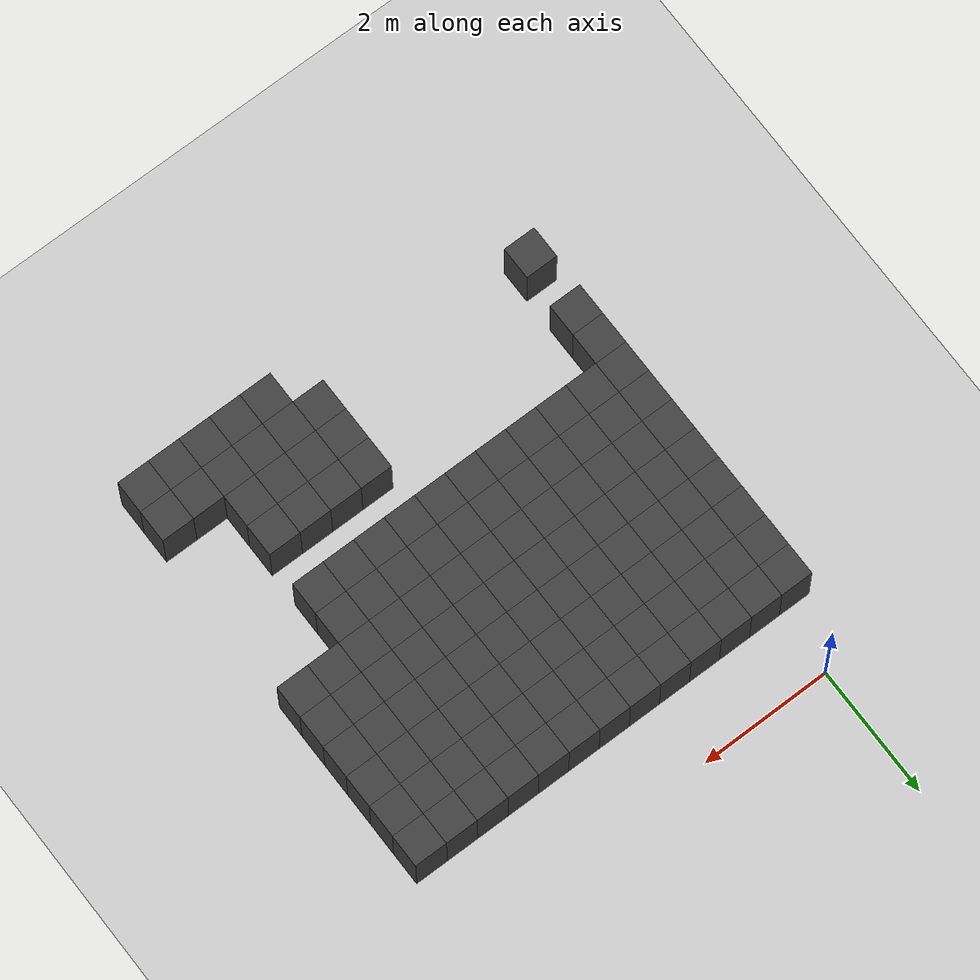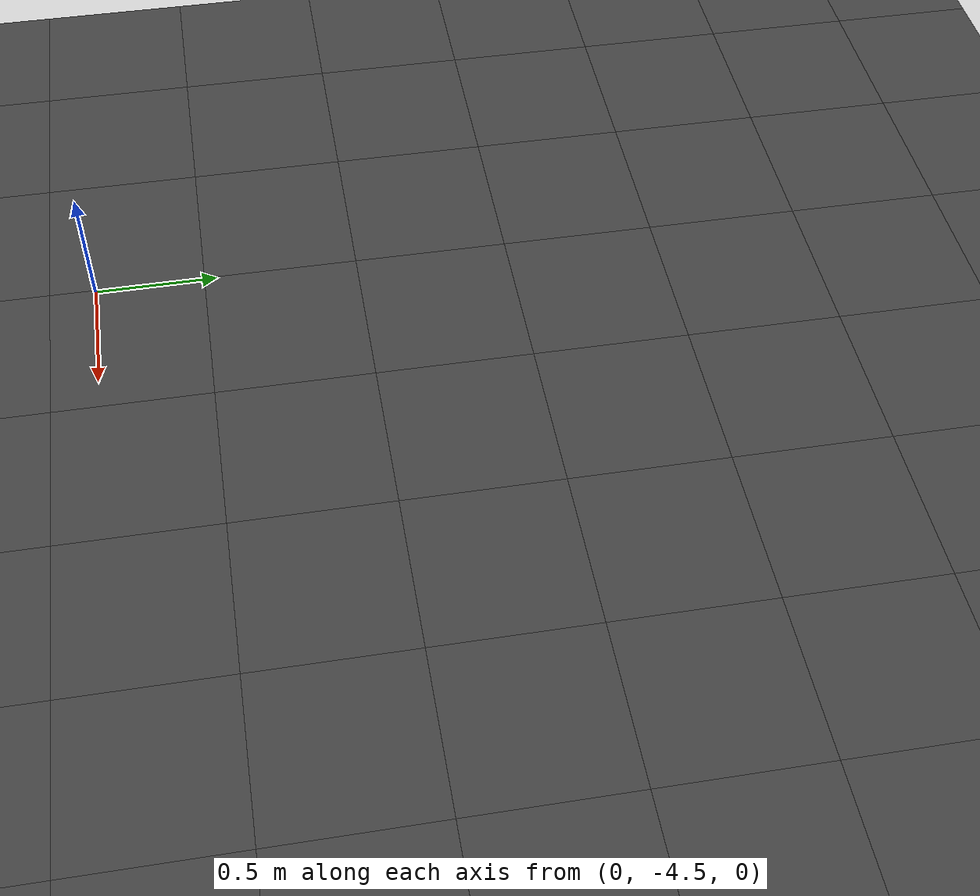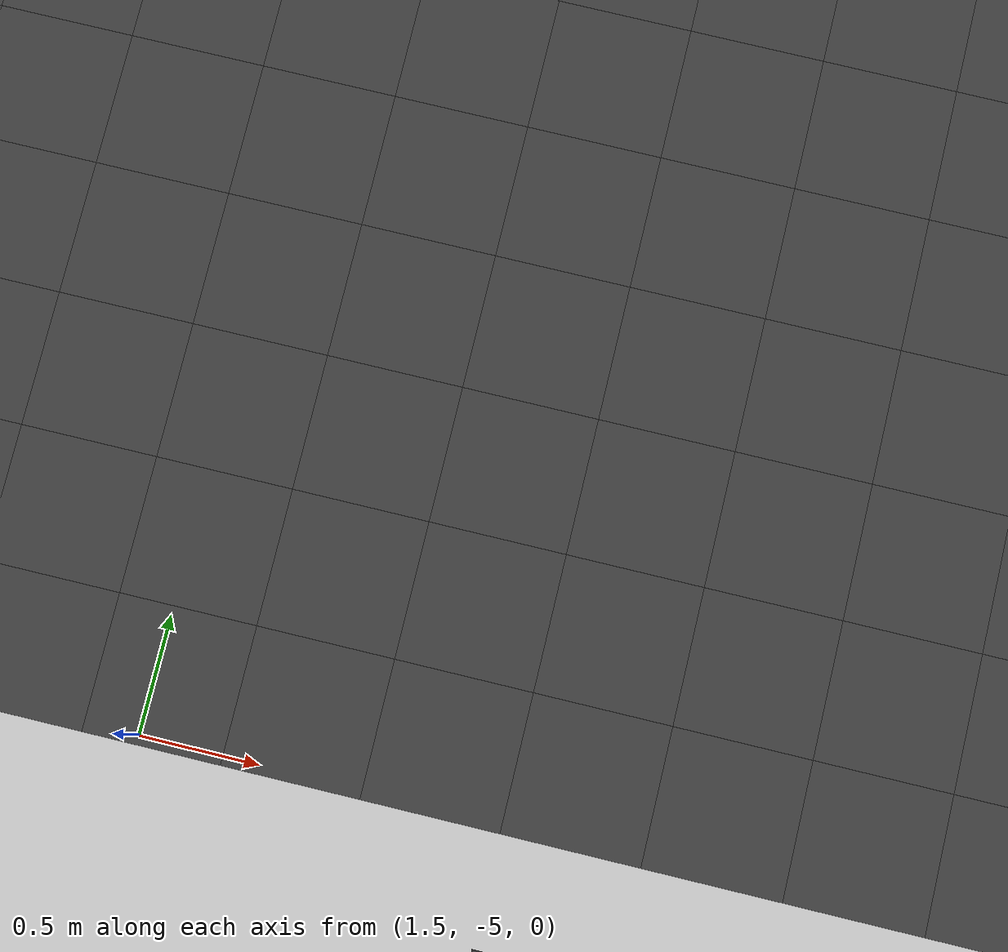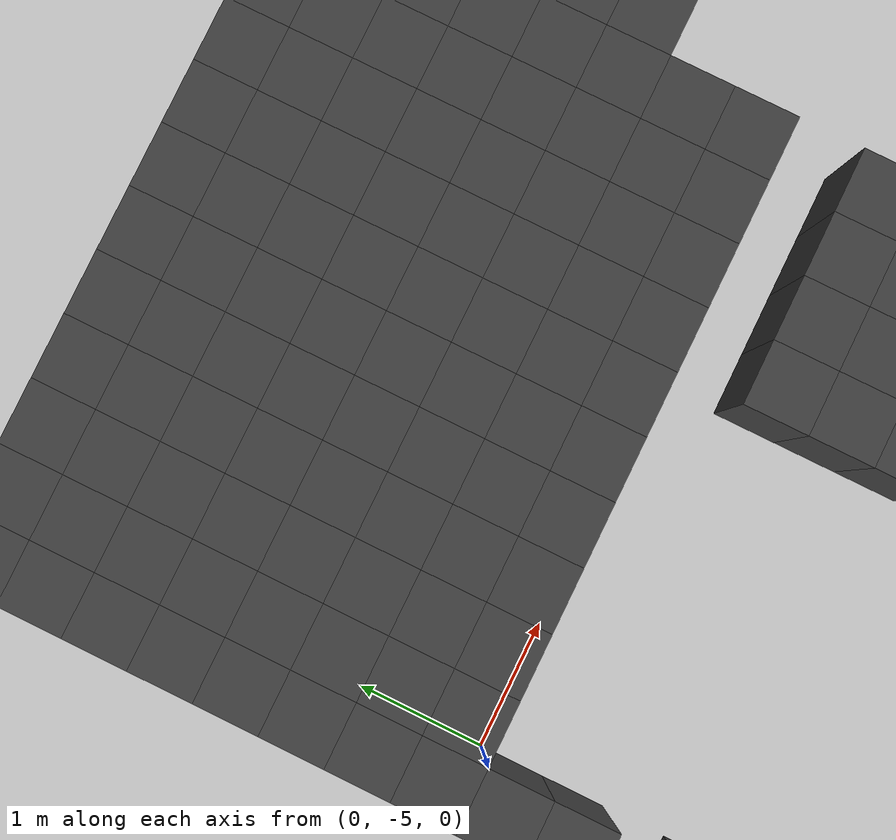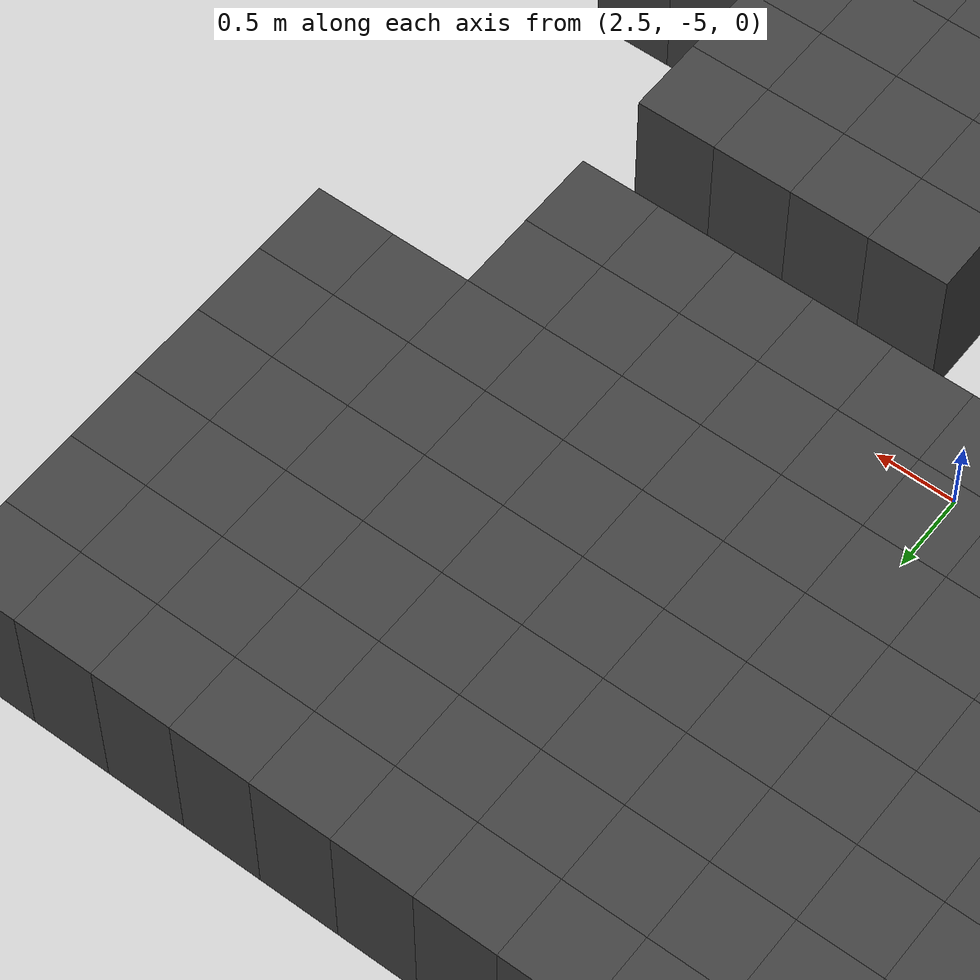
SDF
<sdf version="1.7">
 <world name="map_14888">
  <model name="ground_plane">
   <static>true</static>
   <link name="link">
    <collision name="collision">
     <geometry><plane><normal>0 0 1</normal><size>200 200</size></plane></geometry>
    </collision>
    <visual name="visual">
     <geometry><plane><normal>0 0 1</normal><size>200 200</size></plane></geometry>
     <material><ambient>0.8 0.8 0.8 1</ambient><diffuse>0.8 0.8 0.8 1</diffuse></material>
    </visual>
   </link>
  </model>
  <model name="maze_environment">
   <static>true</static>
   <link name="wall_963">
    <pose>-0.250 -1.250 0.500 0 0 0</pose>
    <collision name="col"><geometry><box><size>0.5 0.5 1.0</size></box></geometry></collision>
    <visual name="vis">
     <geometry><box><size>0.5 0.5 1.0</size></box></geometry>
     <material><ambient>0.15 0.15 0.15 1</ambient><diffuse>0.25 0.25 0.25 1</diffuse></material>
    </visual>
   </link>
   <link name="wall_964">
    <pose>0.250 -1.250 0.500 0 0 0</pose>
    <collision name="col"><geometry><box><size>0.5 0.5 1.0</size></box></geometry></collision>
    <visual name="vis">
     <geometry><box><size>0.5 0.5 1.0</size></box></geometry>
     <material><ambient>0.15 0.15 0.15 1</ambient><diffuse>0.25 0.25 0.25 1</diffuse></material>
    </visual>
   </link>
   <link name="wall_965">
    <pose>0.750 -1.250 0.500 0 0 0</pose>
    <collision name="col"><geometry><box><size>0.5 0.5 1.0</size></box></geometry></collision>
    <visual name="vis">
     <geometry><box><size>0.5 0.5 1.0</size></box></geometry>
     <material><ambient>0.15 0.15 0.15 1</ambient><diffuse>0.25 0.25 0.25 1</diffuse></material>
    </visual>
   </link>
   <link name="wall_966">
    <pose>1.250 -1.250 0.500 0 0 0</pose>
    <collision name="col"><geometry><box><size>0.5 0.5 1.0</size></box></geometry></collision>
    <visual name="vis">
     <geometry><box><size>0.5 0.5 1.0</size></box></geometry>
     <material><ambient>0.15 0.15 0.15 1</ambient><diffuse>0.25 0.25 0.25 1</diffuse></material>
    </visual>
   </link>
   <link name="wall_967">
    <pose>1.750 -1.250 0.500 0 0 0</pose>
    <collision name="col"><geometry><box><size>0.5 0.5 1.0</size></box></geometry></collision>
    <visual name="vis">
     <geometry><box><size>0.5 0.5 1.0</size></box></geometry>
     <material><ambient>0.15 0.15 0.15 1</ambient><diffuse>0.25 0.25 0.25 1</diffuse></material>
    </visual>
   </link>
   <link name="wall_968">
    <pose>2.250 -1.250 0.500 0 0 0</pose>
    <collision name="col"><geometry><box><size>0.5 0.5 1.0</size></box></geometry></collision>
    <visual name="vis">
     <geometry><box><size>0.5 0.5 1.0</size></box></geometry>
     <material><ambient>0.15 0.15 0.15 1</ambient><diffuse>0.25 0.25 0.25 1</diffuse></material>
    </visual>
   </link>
   <link name="wall_969">
    <pose>2.750 -1.250 0.500 0 0 0</pose>
    <collision name="col"><geometry><box><size>0.5 0.5 1.0</size></box></geometry></collision>
    <visual name="vis">
     <geometry><box><size>0.5 0.5 1.0</size></box></geometry>
     <material><ambient>0.15 0.15 0.15 1</ambient><diffuse>0.25 0.25 0.25 1</diffuse></material>
    </visual>
   </link>
   <link name="wall_970">
    <pose>3.250 -1.250 0.500 0 0 0</pose>
    <collision name="col"><geometry><box><size>0.5 0.5 1.0</size></box></geometry></collision>
    <visual name="vis">
     <geometry><box><size>0.5 0.5 1.0</size></box></geometry>
     <material><ambient>0.15 0.15 0.15 1</ambient><diffuse>0.25 0.25 0.25 1</diffuse></material>
    </visual>
   </link>
   <link name="wall_971">
    <pose>3.750 -1.250 0.500 0 0 0</pose>
    <collision name="col"><geometry><box><size>0.5 0.5 1.0</size></box></geometry></collision>
    <visual name="vis">
     <geometry><box><size>0.5 0.5 1.0</size></box></geometry>
     <material><ambient>0.15 0.15 0.15 1</ambient><diffuse>0.25 0.25 0.25 1</diffuse></material>
    </visual>
   </link>
   <link name="wall_972">
    <pose>4.250 -1.250 0.500 0 0 0</pose>
    <collision name="col"><geometry><box><size>0.5 0.5 1.0</size></box></geometry></collision>
    <visual name="vis">
     <geometry><box><size>0.5 0.5 1.0</size></box></geometry>
     <material><ambient>0.15 0.15 0.15 1</ambient><diffuse>0.25 0.25 0.25 1</diffuse></material>
    </visual>
   </link>
   <link name="wall_973">
    <pose>4.750 -1.250 0.500 0 0 0</pose>
    <collision name="col"><geometry><box><size>0.5 0.5 1.0</size></box></geometry></collision>
    <visual name="vis">
     <geometry><box><size>0.5 0.5 1.0</size></box></geometry>
     <material><ambient>0.15 0.15 0.15 1</ambient><diffuse>0.25 0.25 0.25 1</diffuse></material>
    </visual>
   </link>
   <link name="wall_974">
    <pose>5.250 -1.250 0.500 0 0 0</pose>
    <collision name="col"><geometry><box><size>0.5 0.5 1.0</size></box></geometry></collision>
    <visual name="vis">
     <geometry><box><size>0.5 0.5 1.0</size></box></geometry>
     <material><ambient>0.15 0.15 0.15 1</ambient><diffuse>0.25 0.25 0.25 1</diffuse></material>
    </visual>
   </link>
   <link name="wall_975">
    <pose>5.750 -1.250 0.500 0 0 0</pose>
    <collision name="col"><geometry><box><size>0.5 0.5 1.0</size></box></geometry></collision>
    <visual name="vis">
     <geometry><box><size>0.5 0.5 1.0</size></box></geometry>
     <material><ambient>0.15 0.15 0.15 1</ambient><diffuse>0.25 0.25 0.25 1</diffuse></material>
    </visual>
   </link>
   <link name="wall_1009">
    <pose>-0.250 -1.750 0.500 0 0 0</pose>
    <collision name="col"><geometry><box><size>0.5 0.5 1.0</size></box></geometry></collision>
    <visual name="vis">
     <geometry><box><size>0.5 0.5 1.0</size></box></geometry>
     <material><ambient>0.15 0.15 0.15 1</ambient><diffuse>0.25 0.25 0.25 1</diffuse></material>
    </visual>
   </link>
   <link name="wall_1010">
    <pose>0.250 -1.750 0.500 0 0 0</pose>
    <collision name="col"><geometry><box><size>0.5 0.5 1.0</size></box></geometry></collision>
    <visual name="vis">
     <geometry><box><size>0.5 0.5 1.0</size></box></geometry>
     <material><ambient>0.15 0.15 0.15 1</ambient><diffuse>0.25 0.25 0.25 1</diffuse></material>
    </visual>
   </link>
   <link name="wall_1011">
    <pose>0.750 -1.750 0.500 0 0 0</pose>
    <collision name="col"><geometry><box><size>0.5 0.5 1.0</size></box></geometry></collision>
    <visual name="vis">
     <geometry><box><size>0.5 0.5 1.0</size></box></geometry>
     <material><ambient>0.15 0.15 0.15 1</ambient><diffuse>0.25 0.25 0.25 1</diffuse></material>
    </visual>
   </link>
   <link name="wall_1012">
    <pose>1.250 -1.750 0.500 0 0 0</pose>
    <collision name="col"><geometry><box><size>0.5 0.5 1.0</size></box></geometry></collision>
    <visual name="vis">
     <geometry><box><size>0.5 0.5 1.0</size></box></geometry>
     <material><ambient>0.15 0.15 0.15 1</ambient><diffuse>0.25 0.25 0.25 1</diffuse></material>
    </visual>
   </link>
   <link name="wall_1013">
    <pose>1.750 -1.750 0.500 0 0 0</pose>
    <collision name="col"><geometry><box><size>0.5 0.5 1.0</size></box></geometry></collision>
    <visual name="vis">
     <geometry><box><size>0.5 0.5 1.0</size></box></geometry>
     <material><ambient>0.15 0.15 0.15 1</ambient><diffuse>0.25 0.25 0.25 1</diffuse></material>
    </visual>
   </link>
   <link name="wall_1014">
    <pose>2.250 -1.750 0.500 0 0 0</pose>
    <collision name="col"><geometry><box><size>0.5 0.5 1.0</size></box></geometry></collision>
    <visual name="vis">
     <geometry><box><size>0.5 0.5 1.0</size></box></geometry>
     <material><ambient>0.15 0.15 0.15 1</ambient><diffuse>0.25 0.25 0.25 1</diffuse></material>
    </visual>
   </link>
   <link name="wall_1015">
    <pose>2.750 -1.750 0.500 0 0 0</pose>
    <collision name="col"><geometry><box><size>0.5 0.5 1.0</size></box></geometry></collision>
    <visual name="vis">
     <geometry><box><size>0.5 0.5 1.0</size></box></geometry>
     <material><ambient>0.15 0.15 0.15 1</ambient><diffuse>0.25 0.25 0.25 1</diffuse></material>
    </visual>
   </link>
   <link name="wall_1016">
    <pose>3.250 -1.750 0.500 0 0 0</pose>
    <collision name="col"><geometry><box><size>0.5 0.5 1.0</size></box></geometry></collision>
    <visual name="vis">
     <geometry><box><size>0.5 0.5 1.0</size></box></geometry>
     <material><ambient>0.15 0.15 0.15 1</ambient><diffuse>0.25 0.25 0.25 1</diffuse></material>
    </visual>
   </link>
   <link name="wall_1017">
    <pose>3.750 -1.750 0.500 0 0 0</pose>
    <collision name="col"><geometry><box><size>0.5 0.5 1.0</size></box></geometry></collision>
    <visual name="vis">
     <geometry><box><size>0.5 0.5 1.0</size></box></geometry>
     <material><ambient>0.15 0.15 0.15 1</ambient><diffuse>0.25 0.25 0.25 1</diffuse></material>
    </visual>
   </link>
   <link name="wall_1018">
    <pose>4.250 -1.750 0.500 0 0 0</pose>
    <collision name="col"><geometry><box><size>0.5 0.5 1.0</size></box></geometry></collision>
    <visual name="vis">
     <geometry><box><size>0.5 0.5 1.0</size></box></geometry>
     <material><ambient>0.15 0.15 0.15 1</ambient><diffuse>0.25 0.25 0.25 1</diffuse></material>
    </visual>
   </link>
   <link name="wall_1019">
    <pose>4.750 -1.750 0.500 0 0 0</pose>
    <collision name="col"><geometry><box><size>0.5 0.5 1.0</size></box></geometry></collision>
    <visual name="vis">
     <geometry><box><size>0.5 0.5 1.0</size></box></geometry>
     <material><ambient>0.15 0.15 0.15 1</ambient><diffuse>0.25 0.25 0.25 1</diffuse></material>
    </visual>
   </link>
   <link name="wall_1020">
    <pose>5.250 -1.750 0.500 0 0 0</pose>
    <collision name="col"><geometry><box><size>0.5 0.5 1.0</size></box></geometry></collision>
    <visual name="vis">
     <geometry><box><size>0.5 0.5 1.0</size></box></geometry>
     <material><ambient>0.15 0.15 0.15 1</ambient><diffuse>0.25 0.25 0.25 1</diffuse></material>
    </visual>
   </link>
   <link name="wall_1021">
    <pose>5.750 -1.750 0.500 0 0 0</pose>
    <collision name="col"><geometry><box><size>0.5 0.5 1.0</size></box></geometry></collision>
    <visual name="vis">
     <geometry><box><size>0.5 0.5 1.0</size></box></geometry>
     <material><ambient>0.15 0.15 0.15 1</ambient><diffuse>0.25 0.25 0.25 1</diffuse></material>
    </visual>
   </link>
   <link name="wall_1055">
    <pose>-0.250 -2.250 0.500 0 0 0</pose>
    <collision name="col"><geometry><box><size>0.5 0.5 1.0</size></box></geometry></collision>
    <visual name="vis">
     <geometry><box><size>0.5 0.5 1.0</size></box></geometry>
     <material><ambient>0.15 0.15 0.15 1</ambient><diffuse>0.25 0.25 0.25 1</diffuse></material>
    </visual>
   </link>
   <link name="wall_1056">
    <pose>0.250 -2.250 0.500 0 0 0</pose>
    <collision name="col"><geometry><box><size>0.5 0.5 1.0</size></box></geometry></collision>
    <visual name="vis">
     <geometry><box><size>0.5 0.5 1.0</size></box></geometry>
     <material><ambient>0.15 0.15 0.15 1</ambient><diffuse>0.25 0.25 0.25 1</diffuse></material>
    </visual>
   </link>
   <link name="wall_1057">
    <pose>0.750 -2.250 0.500 0 0 0</pose>
    <collision name="col"><geometry><box><size>0.5 0.5 1.0</size></box></geometry></collision>
    <visual name="vis">
     <geometry><box><size>0.5 0.5 1.0</size></box></geometry>
     <material><ambient>0.15 0.15 0.15 1</ambient><diffuse>0.25 0.25 0.25 1</diffuse></material>
    </visual>
   </link>
   <link name="wall_1058">
    <pose>1.250 -2.250 0.500 0 0 0</pose>
    <collision name="col"><geometry><box><size>0.5 0.5 1.0</size></box></geometry></collision>
    <visual name="vis">
     <geometry><box><size>0.5 0.5 1.0</size></box></geometry>
     <material><ambient>0.15 0.15 0.15 1</ambient><diffuse>0.25 0.25 0.25 1</diffuse></material>
    </visual>
   </link>
   <link name="wall_1059">
    <pose>1.750 -2.250 0.500 0 0 0</pose>
    <collision name="col"><geometry><box><size>0.5 0.5 1.0</size></box></geometry></collision>
    <visual name="vis">
     <geometry><box><size>0.5 0.5 1.0</size></box></geometry>
     <material><ambient>0.15 0.15 0.15 1</ambient><diffuse>0.25 0.25 0.25 1</diffuse></material>
    </visual>
   </link>
   <link name="wall_1060">
    <pose>2.250 -2.250 0.500 0 0 0</pose>
    <collision name="col"><geometry><box><size>0.5 0.5 1.0</size></box></geometry></collision>
    <visual name="vis">
     <geometry><box><size>0.5 0.5 1.0</size></box></geometry>
     <material><ambient>0.15 0.15 0.15 1</ambient><diffuse>0.25 0.25 0.25 1</diffuse></material>
    </visual>
   </link>
   <link name="wall_1061">
    <pose>2.750 -2.250 0.500 0 0 0</pose>
    <collision name="col"><geometry><box><size>0.5 0.5 1.0</size></box></geometry></collision>
    <visual name="vis">
     <geometry><box><size>0.5 0.5 1.0</size></box></geometry>
     <material><ambient>0.15 0.15 0.15 1</ambient><diffuse>0.25 0.25 0.25 1</diffuse></material>
    </visual>
   </link>
   <link name="wall_1062">
    <pose>3.250 -2.250 0.500 0 0 0</pose>
    <collision name="col"><geometry><box><size>0.5 0.5 1.0</size></box></geometry></collision>
    <visual name="vis">
     <geometry><box><size>0.5 0.5 1.0</size></box></geometry>
     <material><ambient>0.15 0.15 0.15 1</ambient><diffuse>0.25 0.25 0.25 1</diffuse></material>
    </visual>
   </link>
   <link name="wall_1063">
    <pose>3.750 -2.250 0.500 0 0 0</pose>
    <collision name="col"><geometry><box><size>0.5 0.5 1.0</size></box></geometry></collision>
    <visual name="vis">
     <geometry><box><size>0.5 0.5 1.0</size></box></geometry>
     <material><ambient>0.15 0.15 0.15 1</ambient><diffuse>0.25 0.25 0.25 1</diffuse></material>
    </visual>
   </link>
   <link name="wall_1064">
    <pose>4.250 -2.250 0.500 0 0 0</pose>
    <collision name="col"><geometry><box><size>0.5 0.5 1.0</size></box></geometry></collision>
    <visual name="vis">
     <geometry><box><size>0.5 0.5 1.0</size></box></geometry>
     <material><ambient>0.15 0.15 0.15 1</ambient><diffuse>0.25 0.25 0.25 1</diffuse></material>
    </visual>
   </link>
   <link name="wall_1065">
    <pose>4.750 -2.250 0.500 0 0 0</pose>
    <collision name="col"><geometry><box><size>0.5 0.5 1.0</size></box></geometry></collision>
    <visual name="vis">
     <geometry><box><size>0.5 0.5 1.0</size></box></geometry>
     <material><ambient>0.15 0.15 0.15 1</ambient><diffuse>0.25 0.25 0.25 1</diffuse></material>
    </visual>
   </link>
   <link name="wall_1066">
    <pose>5.250 -2.250 0.500 0 0 0</pose>
    <collision name="col"><geometry><box><size>0.5 0.5 1.0</size></box></geometry></collision>
    <visual name="vis">
     <geometry><box><size>0.5 0.5 1.0</size></box></geometry>
     <material><ambient>0.15 0.15 0.15 1</ambient><diffuse>0.25 0.25 0.25 1</diffuse></material>
    </visual>
   </link>
   <link name="wall_1067">
    <pose>5.750 -2.250 0.500 0 0 0</pose>
    <collision name="col"><geometry><box><size>0.5 0.5 1.0</size></box></geometry></collision>
    <visual name="vis">
     <geometry><box><size>0.5 0.5 1.0</size></box></geometry>
     <material><ambient>0.15 0.15 0.15 1</ambient><diffuse>0.25 0.25 0.25 1</diffuse></material>
    </visual>
   </link>
   <link name="wall_1104">
    <pose>-0.250 -2.750 0.500 0 0 0</pose>
    <collision name="col"><geometry><box><size>0.5 0.5 1.0</size></box></geometry></collision>
    <visual name="vis">
     <geometry><box><size>0.5 0.5 1.0</size></box></geometry>
     <material><ambient>0.15 0.15 0.15 1</ambient><diffuse>0.25 0.25 0.25 1</diffuse></material>
    </visual>
   </link>
   <link name="wall_1105">
    <pose>0.250 -2.750 0.500 0 0 0</pose>
    <collision name="col"><geometry><box><size>0.5 0.5 1.0</size></box></geometry></collision>
    <visual name="vis">
     <geometry><box><size>0.5 0.5 1.0</size></box></geometry>
     <material><ambient>0.15 0.15 0.15 1</ambient><diffuse>0.25 0.25 0.25 1</diffuse></material>
    </visual>
   </link>
   <link name="wall_1106">
    <pose>0.750 -2.750 0.500 0 0 0</pose>
    <collision name="col"><geometry><box><size>0.5 0.5 1.0</size></box></geometry></collision>
    <visual name="vis">
     <geometry><box><size>0.5 0.5 1.0</size></box></geometry>
     <material><ambient>0.15 0.15 0.15 1</ambient><diffuse>0.25 0.25 0.25 1</diffuse></material>
    </visual>
   </link>
   <link name="wall_1107">
    <pose>1.250 -2.750 0.500 0 0 0</pose>
    <collision name="col"><geometry><box><size>0.5 0.5 1.0</size></box></geometry></collision>
    <visual name="vis">
     <geometry><box><size>0.5 0.5 1.0</size></box></geometry>
     <material><ambient>0.15 0.15 0.15 1</ambient><diffuse>0.25 0.25 0.25 1</diffuse></material>
    </visual>
   </link>
   <link name="wall_1108">
    <pose>1.750 -2.750 0.500 0 0 0</pose>
    <collision name="col"><geometry><box><size>0.5 0.5 1.0</size></box></geometry></collision>
    <visual name="vis">
     <geometry><box><size>0.5 0.5 1.0</size></box></geometry>
     <material><ambient>0.15 0.15 0.15 1</ambient><diffuse>0.25 0.25 0.25 1</diffuse></material>
    </visual>
   </link>
   <link name="wall_1109">
    <pose>2.250 -2.750 0.500 0 0 0</pose>
    <collision name="col"><geometry><box><size>0.5 0.5 1.0</size></box></geometry></collision>
    <visual name="vis">
     <geometry><box><size>0.5 0.5 1.0</size></box></geometry>
     <material><ambient>0.15 0.15 0.15 1</ambient><diffuse>0.25 0.25 0.25 1</diffuse></material>
    </visual>
   </link>
   <link name="wall_1110">
    <pose>2.750 -2.750 0.500 0 0 0</pose>
    <collision name="col"><geometry><box><size>0.5 0.5 1.0</size></box></geometry></collision>
    <visual name="vis">
     <geometry><box><size>0.5 0.5 1.0</size></box></geometry>
     <material><ambient>0.15 0.15 0.15 1</ambient><diffuse>0.25 0.25 0.25 1</diffuse></material>
    </visual>
   </link>
   <link name="wall_1111">
    <pose>3.250 -2.750 0.500 0 0 0</pose>
    <collision name="col"><geometry><box><size>0.5 0.5 1.0</size></box></geometry></collision>
    <visual name="vis">
     <geometry><box><size>0.5 0.5 1.0</size></box></geometry>
     <material><ambient>0.15 0.15 0.15 1</ambient><diffuse>0.25 0.25 0.25 1</diffuse></material>
    </visual>
   </link>
   <link name="wall_1112">
    <pose>3.750 -2.750 0.500 0 0 0</pose>
    <collision name="col"><geometry><box><size>0.5 0.5 1.0</size></box></geometry></collision>
    <visual name="vis">
     <geometry><box><size>0.5 0.5 1.0</size></box></geometry>
     <material><ambient>0.15 0.15 0.15 1</ambient><diffuse>0.25 0.25 0.25 1</diffuse></material>
    </visual>
   </link>
   <link name="wall_1113">
    <pose>4.250 -2.750 0.500 0 0 0</pose>
    <collision name="col"><geometry><box><size>0.5 0.5 1.0</size></box></geometry></collision>
    <visual name="vis">
     <geometry><box><size>0.5 0.5 1.0</size></box></geometry>
     <material><ambient>0.15 0.15 0.15 1</ambient><diffuse>0.25 0.25 0.25 1</diffuse></material>
    </visual>
   </link>
   <link name="wall_1114">
    <pose>4.750 -2.750 0.500 0 0 0</pose>
    <collision name="col"><geometry><box><size>0.5 0.5 1.0</size></box></geometry></collision>
    <visual name="vis">
     <geometry><box><size>0.5 0.5 1.0</size></box></geometry>
     <material><ambient>0.15 0.15 0.15 1</ambient><diffuse>0.25 0.25 0.25 1</diffuse></material>
    </visual>
   </link>
   <link name="wall_1115">
    <pose>5.250 -2.750 0.500 0 0 0</pose>
    <collision name="col"><geometry><box><size>0.5 0.5 1.0</size></box></geometry></collision>
    <visual name="vis">
     <geometry><box><size>0.5 0.5 1.0</size></box></geometry>
     <material><ambient>0.15 0.15 0.15 1</ambient><diffuse>0.25 0.25 0.25 1</diffuse></material>
    </visual>
   </link>
   <link name="wall_1116">
    <pose>5.750 -2.750 0.500 0 0 0</pose>
    <collision name="col"><geometry><box><size>0.5 0.5 1.0</size></box></geometry></collision>
    <visual name="vis">
     <geometry><box><size>0.5 0.5 1.0</size></box></geometry>
     <material><ambient>0.15 0.15 0.15 1</ambient><diffuse>0.25 0.25 0.25 1</diffuse></material>
    </visual>
   </link>
   <link name="wall_1153">
    <pose>-0.250 -3.250 0.500 0 0 0</pose>
    <collision name="col"><geometry><box><size>0.5 0.5 1.0</size></box></geometry></collision>
    <visual name="vis">
     <geometry><box><size>0.5 0.5 1.0</size></box></geometry>
     <material><ambient>0.15 0.15 0.15 1</ambient><diffuse>0.25 0.25 0.25 1</diffuse></material>
    </visual>
   </link>
   <link name="wall_1154">
    <pose>0.250 -3.250 0.500 0 0 0</pose>
    <collision name="col"><geometry><box><size>0.5 0.5 1.0</size></box></geometry></collision>
    <visual name="vis">
     <geometry><box><size>0.5 0.5 1.0</size></box></geometry>
     <material><ambient>0.15 0.15 0.15 1</ambient><diffuse>0.25 0.25 0.25 1</diffuse></material>
    </visual>
   </link>
   <link name="wall_1155">
    <pose>0.750 -3.250 0.500 0 0 0</pose>
    <collision name="col"><geometry><box><size>0.5 0.5 1.0</size></box></geometry></collision>
    <visual name="vis">
     <geometry><box><size>0.5 0.5 1.0</size></box></geometry>
     <material><ambient>0.15 0.15 0.15 1</ambient><diffuse>0.25 0.25 0.25 1</diffuse></material>
    </visual>
   </link>
   <link name="wall_1156">
    <pose>1.250 -3.250 0.500 0 0 0</pose>
    <collision name="col"><geometry><box><size>0.5 0.5 1.0</size></box></geometry></collision>
    <visual name="vis">
     <geometry><box><size>0.5 0.5 1.0</size></box></geometry>
     <material><ambient>0.15 0.15 0.15 1</ambient><diffuse>0.25 0.25 0.25 1</diffuse></material>
    </visual>
   </link>
   <link name="wall_1157">
    <pose>1.750 -3.250 0.500 0 0 0</pose>
    <collision name="col"><geometry><box><size>0.5 0.5 1.0</size></box></geometry></collision>
    <visual name="vis">
     <geometry><box><size>0.5 0.5 1.0</size></box></geometry>
     <material><ambient>0.15 0.15 0.15 1</ambient><diffuse>0.25 0.25 0.25 1</diffuse></material>
    </visual>
   </link>
   <link name="wall_1158">
    <pose>2.250 -3.250 0.500 0 0 0</pose>
    <collision name="col"><geometry><box><size>0.5 0.5 1.0</size></box></geometry></collision>
    <visual name="vis">
     <geometry><box><size>0.5 0.5 1.0</size></box></geometry>
     <material><ambient>0.15 0.15 0.15 1</ambient><diffuse>0.25 0.25 0.25 1</diffuse></material>
    </visual>
   </link>
   <link name="wall_1159">
    <pose>2.750 -3.250 0.500 0 0 0</pose>
    <collision name="col"><geometry><box><size>0.5 0.5 1.0</size></box></geometry></collision>
    <visual name="vis">
     <geometry><box><size>0.5 0.5 1.0</size></box></geometry>
     <material><ambient>0.15 0.15 0.15 1</ambient><diffuse>0.25 0.25 0.25 1</diffuse></material>
    </visual>
   </link>
   <link name="wall_1160">
    <pose>3.250 -3.250 0.500 0 0 0</pose>
    <collision name="col"><geometry><box><size>0.5 0.5 1.0</size></box></geometry></collision>
    <visual name="vis">
     <geometry><box><size>0.5 0.5 1.0</size></box></geometry>
     <material><ambient>0.15 0.15 0.15 1</ambient><diffuse>0.25 0.25 0.25 1</diffuse></material>
    </visual>
   </link>
   <link name="wall_1161">
    <pose>3.750 -3.250 0.500 0 0 0</pose>
    <collision name="col"><geometry><box><size>0.5 0.5 1.0</size></box></geometry></collision>
    <visual name="vis">
     <geometry><box><size>0.5 0.5 1.0</size></box></geometry>
     <material><ambient>0.15 0.15 0.15 1</ambient><diffuse>0.25 0.25 0.25 1</diffuse></material>
    </visual>
   </link>
   <link name="wall_1162">
    <pose>4.250 -3.250 0.500 0 0 0</pose>
    <collision name="col"><geometry><box><size>0.5 0.5 1.0</size></box></geometry></collision>
    <visual name="vis">
     <geometry><box><size>0.5 0.5 1.0</size></box></geometry>
     <material><ambient>0.15 0.15 0.15 1</ambient><diffuse>0.25 0.25 0.25 1</diffuse></material>
    </visual>
   </link>
   <link name="wall_1163">
    <pose>4.750 -3.250 0.500 0 0 0</pose>
    <collision name="col"><geometry><box><size>0.5 0.5 1.0</size></box></geometry></collision>
    <visual name="vis">
     <geometry><box><size>0.5 0.5 1.0</size></box></geometry>
     <material><ambient>0.15 0.15 0.15 1</ambient><diffuse>0.25 0.25 0.25 1</diffuse></material>
    </visual>
   </link>
   <link name="wall_1164">
    <pose>5.250 -3.250 0.500 0 0 0</pose>
    <collision name="col"><geometry><box><size>0.5 0.5 1.0</size></box></geometry></collision>
    <visual name="vis">
     <geometry><box><size>0.5 0.5 1.0</size></box></geometry>
     <material><ambient>0.15 0.15 0.15 1</ambient><diffuse>0.25 0.25 0.25 1</diffuse></material>
    </visual>
   </link>
   <link name="wall_1165">
    <pose>5.750 -3.250 0.500 0 0 0</pose>
    <collision name="col"><geometry><box><size>0.5 0.5 1.0</size></box></geometry></collision>
    <visual name="vis">
     <geometry><box><size>0.5 0.5 1.0</size></box></geometry>
     <material><ambient>0.15 0.15 0.15 1</ambient><diffuse>0.25 0.25 0.25 1</diffuse></material>
    </visual>
   </link>
   <link name="wall_1202">
    <pose>-0.250 -3.750 0.500 0 0 0</pose>
    <collision name="col"><geometry><box><size>0.5 0.5 1.0</size></box></geometry></collision>
    <visual name="vis">
     <geometry><box><size>0.5 0.5 1.0</size></box></geometry>
     <material><ambient>0.15 0.15 0.15 1</ambient><diffuse>0.25 0.25 0.25 1</diffuse></material>
    </visual>
   </link>
   <link name="wall_1203">
    <pose>0.250 -3.750 0.500 0 0 0</pose>
    <collision name="col"><geometry><box><size>0.5 0.5 1.0</size></box></geometry></collision>
    <visual name="vis">
     <geometry><box><size>0.5 0.5 1.0</size></box></geometry>
     <material><ambient>0.15 0.15 0.15 1</ambient><diffuse>0.25 0.25 0.25 1</diffuse></material>
    </visual>
   </link>
   <link name="wall_1204">
    <pose>0.750 -3.750 0.500 0 0 0</pose>
    <collision name="col"><geometry><box><size>0.5 0.5 1.0</size></box></geometry></collision>
    <visual name="vis">
     <geometry><box><size>0.5 0.5 1.0</size></box></geometry>
     <material><ambient>0.15 0.15 0.15 1</ambient><diffuse>0.25 0.25 0.25 1</diffuse></material>
    </visual>
   </link>
   <link name="wall_1205">
    <pose>1.250 -3.750 0.500 0 0 0</pose>
    <collision name="col"><geometry><box><size>0.5 0.5 1.0</size></box></geometry></collision>
    <visual name="vis">
     <geometry><box><size>0.5 0.5 1.0</size></box></geometry>
     <material><ambient>0.15 0.15 0.15 1</ambient><diffuse>0.25 0.25 0.25 1</diffuse></material>
    </visual>
   </link>
   <link name="wall_1206">
    <pose>1.750 -3.750 0.500 0 0 0</pose>
    <collision name="col"><geometry><box><size>0.5 0.5 1.0</size></box></geometry></collision>
    <visual name="vis">
     <geometry><box><size>0.5 0.5 1.0</size></box></geometry>
     <material><ambient>0.15 0.15 0.15 1</ambient><diffuse>0.25 0.25 0.25 1</diffuse></material>
    </visual>
   </link>
   <link name="wall_1207">
    <pose>2.250 -3.750 0.500 0 0 0</pose>
    <collision name="col"><geometry><box><size>0.5 0.5 1.0</size></box></geometry></collision>
    <visual name="vis">
     <geometry><box><size>0.5 0.5 1.0</size></box></geometry>
     <material><ambient>0.15 0.15 0.15 1</ambient><diffuse>0.25 0.25 0.25 1</diffuse></material>
    </visual>
   </link>
   <link name="wall_1208">
    <pose>2.750 -3.750 0.500 0 0 0</pose>
    <collision name="col"><geometry><box><size>0.5 0.5 1.0</size></box></geometry></collision>
    <visual name="vis">
     <geometry><box><size>0.5 0.5 1.0</size></box></geometry>
     <material><ambient>0.15 0.15 0.15 1</ambient><diffuse>0.25 0.25 0.25 1</diffuse></material>
    </visual>
   </link>
   <link name="wall_1209">
    <pose>3.250 -3.750 0.500 0 0 0</pose>
    <collision name="col"><geometry><box><size>0.5 0.5 1.0</size></box></geometry></collision>
    <visual name="vis">
     <geometry><box><size>0.5 0.5 1.0</size></box></geometry>
     <material><ambient>0.15 0.15 0.15 1</ambient><diffuse>0.25 0.25 0.25 1</diffuse></material>
    </visual>
   </link>
   <link name="wall_1210">
    <pose>3.750 -3.750 0.500 0 0 0</pose>
    <collision name="col"><geometry><box><size>0.5 0.5 1.0</size></box></geometry></collision>
    <visual name="vis">
     <geometry><box><size>0.5 0.5 1.0</size></box></geometry>
     <material><ambient>0.15 0.15 0.15 1</ambient><diffuse>0.25 0.25 0.25 1</diffuse></material>
    </visual>
   </link>
   <link name="wall_1211">
    <pose>4.250 -3.750 0.500 0 0 0</pose>
    <collision name="col"><geometry><box><size>0.5 0.5 1.0</size></box></geometry></collision>
    <visual name="vis">
     <geometry><box><size>0.5 0.5 1.0</size></box></geometry>
     <material><ambient>0.15 0.15 0.15 1</ambient><diffuse>0.25 0.25 0.25 1</diffuse></material>
    </visual>
   </link>
   <link name="wall_1212">
    <pose>4.750 -3.750 0.500 0 0 0</pose>
    <collision name="col"><geometry><box><size>0.5 0.5 1.0</size></box></geometry></collision>
    <visual name="vis">
     <geometry><box><size>0.5 0.5 1.0</size></box></geometry>
     <material><ambient>0.15 0.15 0.15 1</ambient><diffuse>0.25 0.25 0.25 1</diffuse></material>
    </visual>
   </link>
   <link name="wall_1213">
    <pose>5.250 -3.750 0.500 0 0 0</pose>
    <collision name="col"><geometry><box><size>0.5 0.5 1.0</size></box></geometry></collision>
    <visual name="vis">
     <geometry><box><size>0.5 0.5 1.0</size></box></geometry>
     <material><ambient>0.15 0.15 0.15 1</ambient><diffuse>0.25 0.25 0.25 1</diffuse></material>
    </visual>
   </link>
   <link name="wall_1214">
    <pose>5.750 -3.750 0.500 0 0 0</pose>
    <collision name="col"><geometry><box><size>0.5 0.5 1.0</size></box></geometry></collision>
    <visual name="vis">
     <geometry><box><size>0.5 0.5 1.0</size></box></geometry>
     <material><ambient>0.15 0.15 0.15 1</ambient><diffuse>0.25 0.25 0.25 1</diffuse></material>
    </visual>
   </link>
   <link name="wall_1244">
    <pose>-0.250 -4.250 0.500 0 0 0</pose>
    <collision name="col"><geometry><box><size>0.5 0.5 1.0</size></box></geometry></collision>
    <visual name="vis">
     <geometry><box><size>0.5 0.5 1.0</size></box></geometry>
     <material><ambient>0.15 0.15 0.15 1</ambient><diffuse>0.25 0.25 0.25 1</diffuse></material>
    </visual>
   </link>
   <link name="wall_1245">
    <pose>0.250 -4.250 0.500 0 0 0</pose>
    <collision name="col"><geometry><box><size>0.5 0.5 1.0</size></box></geometry></collision>
    <visual name="vis">
     <geometry><box><size>0.5 0.5 1.0</size></box></geometry>
     <material><ambient>0.15 0.15 0.15 1</ambient><diffuse>0.25 0.25 0.25 1</diffuse></material>
    </visual>
   </link>
   <link name="wall_1246">
    <pose>0.750 -4.250 0.500 0 0 0</pose>
    <collision name="col"><geometry><box><size>0.5 0.5 1.0</size></box></geometry></collision>
    <visual name="vis">
     <geometry><box><size>0.5 0.5 1.0</size></box></geometry>
     <material><ambient>0.15 0.15 0.15 1</ambient><diffuse>0.25 0.25 0.25 1</diffuse></material>
    </visual>
   </link>
   <link name="wall_1247">
    <pose>1.250 -4.250 0.500 0 0 0</pose>
    <collision name="col"><geometry><box><size>0.5 0.5 1.0</size></box></geometry></collision>
    <visual name="vis">
     <geometry><box><size>0.5 0.5 1.0</size></box></geometry>
     <material><ambient>0.15 0.15 0.15 1</ambient><diffuse>0.25 0.25 0.25 1</diffuse></material>
    </visual>
   </link>
   <link name="wall_1248">
    <pose>1.750 -4.250 0.500 0 0 0</pose>
    <collision name="col"><geometry><box><size>0.5 0.5 1.0</size></box></geometry></collision>
    <visual name="vis">
     <geometry><box><size>0.5 0.5 1.0</size></box></geometry>
     <material><ambient>0.15 0.15 0.15 1</ambient><diffuse>0.25 0.25 0.25 1</diffuse></material>
    </visual>
   </link>
   <link name="wall_1249">
    <pose>2.250 -4.250 0.500 0 0 0</pose>
    <collision name="col"><geometry><box><size>0.5 0.5 1.0</size></box></geometry></collision>
    <visual name="vis">
     <geometry><box><size>0.5 0.5 1.0</size></box></geometry>
     <material><ambient>0.15 0.15 0.15 1</ambient><diffuse>0.25 0.25 0.25 1</diffuse></material>
    </visual>
   </link>
   <link name="wall_1250">
    <pose>2.750 -4.250 0.500 0 0 0</pose>
    <collision name="col"><geometry><box><size>0.5 0.5 1.0</size></box></geometry></collision>
    <visual name="vis">
     <geometry><box><size>0.5 0.5 1.0</size></box></geometry>
     <material><ambient>0.15 0.15 0.15 1</ambient><diffuse>0.25 0.25 0.25 1</diffuse></material>
    </visual>
   </link>
   <link name="wall_1251">
    <pose>3.250 -4.250 0.500 0 0 0</pose>
    <collision name="col"><geometry><box><size>0.5 0.5 1.0</size></box></geometry></collision>
    <visual name="vis">
     <geometry><box><size>0.5 0.5 1.0</size></box></geometry>
     <material><ambient>0.15 0.15 0.15 1</ambient><diffuse>0.25 0.25 0.25 1</diffuse></material>
    </visual>
   </link>
   <link name="wall_1252">
    <pose>3.750 -4.250 0.500 0 0 0</pose>
    <collision name="col"><geometry><box><size>0.5 0.5 1.0</size></box></geometry></collision>
    <visual name="vis">
     <geometry><box><size>0.5 0.5 1.0</size></box></geometry>
     <material><ambient>0.15 0.15 0.15 1</ambient><diffuse>0.25 0.25 0.25 1</diffuse></material>
    </visual>
   </link>
   <link name="wall_1253">
    <pose>4.250 -4.250 0.500 0 0 0</pose>
    <collision name="col"><geometry><box><size>0.5 0.5 1.0</size></box></geometry></collision>
    <visual name="vis">
     <geometry><box><size>0.5 0.5 1.0</size></box></geometry>
     <material><ambient>0.15 0.15 0.15 1</ambient><diffuse>0.25 0.25 0.25 1</diffuse></material>
    </visual>
   </link>
   <link name="wall_1254">
    <pose>4.750 -4.250 0.500 0 0 0</pose>
    <collision name="col"><geometry><box><size>0.5 0.5 1.0</size></box></geometry></collision>
    <visual name="vis">
     <geometry><box><size>0.5 0.5 1.0</size></box></geometry>
     <material><ambient>0.15 0.15 0.15 1</ambient><diffuse>0.25 0.25 0.25 1</diffuse></material>
    </visual>
   </link>
   <link name="wall_1278">
    <pose>-0.250 -4.750 0.500 0 0 0</pose>
    <collision name="col"><geometry><box><size>0.5 0.5 1.0</size></box></geometry></collision>
    <visual name="vis">
     <geometry><box><size>0.5 0.5 1.0</size></box></geometry>
     <material><ambient>0.15 0.15 0.15 1</ambient><diffuse>0.25 0.25 0.25 1</diffuse></material>
    </visual>
   </link>
   <link name="wall_1279">
    <pose>0.250 -4.750 0.500 0 0 0</pose>
    <collision name="col"><geometry><box><size>0.5 0.5 1.0</size></box></geometry></collision>
    <visual name="vis">
     <geometry><box><size>0.5 0.5 1.0</size></box></geometry>
     <material><ambient>0.15 0.15 0.15 1</ambient><diffuse>0.25 0.25 0.25 1</diffuse></material>
    </visual>
   </link>
   <link name="wall_1280">
    <pose>0.750 -4.750 0.500 0 0 0</pose>
    <collision name="col"><geometry><box><size>0.5 0.5 1.0</size></box></geometry></collision>
    <visual name="vis">
     <geometry><box><size>0.5 0.5 1.0</size></box></geometry>
     <material><ambient>0.15 0.15 0.15 1</ambient><diffuse>0.25 0.25 0.25 1</diffuse></material>
    </visual>
   </link>
   <link name="wall_1281">
    <pose>1.250 -4.750 0.500 0 0 0</pose>
    <collision name="col"><geometry><box><size>0.5 0.5 1.0</size></box></geometry></collision>
    <visual name="vis">
     <geometry><box><size>0.5 0.5 1.0</size></box></geometry>
     <material><ambient>0.15 0.15 0.15 1</ambient><diffuse>0.25 0.25 0.25 1</diffuse></material>
    </visual>
   </link>
   <link name="wall_1282">
    <pose>1.750 -4.750 0.500 0 0 0</pose>
    <collision name="col"><geometry><box><size>0.5 0.5 1.0</size></box></geometry></collision>
    <visual name="vis">
     <geometry><box><size>0.5 0.5 1.0</size></box></geometry>
     <material><ambient>0.15 0.15 0.15 1</ambient><diffuse>0.25 0.25 0.25 1</diffuse></material>
    </visual>
   </link>
   <link name="wall_1283">
    <pose>2.250 -4.750 0.500 0 0 0</pose>
    <collision name="col"><geometry><box><size>0.5 0.5 1.0</size></box></geometry></collision>
    <visual name="vis">
     <geometry><box><size>0.5 0.5 1.0</size></box></geometry>
     <material><ambient>0.15 0.15 0.15 1</ambient><diffuse>0.25 0.25 0.25 1</diffuse></material>
    </visual>
   </link>
   <link name="wall_1284">
    <pose>2.750 -4.750 0.500 0 0 0</pose>
    <collision name="col"><geometry><box><size>0.5 0.5 1.0</size></box></geometry></collision>
    <visual name="vis">
     <geometry><box><size>0.5 0.5 1.0</size></box></geometry>
     <material><ambient>0.15 0.15 0.15 1</ambient><diffuse>0.25 0.25 0.25 1</diffuse></material>
    </visual>
   </link>
   <link name="wall_1285">
    <pose>3.250 -4.750 0.500 0 0 0</pose>
    <collision name="col"><geometry><box><size>0.5 0.5 1.0</size></box></geometry></collision>
    <visual name="vis">
     <geometry><box><size>0.5 0.5 1.0</size></box></geometry>
     <material><ambient>0.15 0.15 0.15 1</ambient><diffuse>0.25 0.25 0.25 1</diffuse></material>
    </visual>
   </link>
   <link name="wall_1286">
    <pose>3.750 -4.750 0.500 0 0 0</pose>
    <collision name="col"><geometry><box><size>0.5 0.5 1.0</size></box></geometry></collision>
    <visual name="vis">
     <geometry><box><size>0.5 0.5 1.0</size></box></geometry>
     <material><ambient>0.15 0.15 0.15 1</ambient><diffuse>0.25 0.25 0.25 1</diffuse></material>
    </visual>
   </link>
   <link name="wall_1287">
    <pose>4.250 -4.750 0.500 0 0 0</pose>
    <collision name="col"><geometry><box><size>0.5 0.5 1.0</size></box></geometry></collision>
    <visual name="vis">
     <geometry><box><size>0.5 0.5 1.0</size></box></geometry>
     <material><ambient>0.15 0.15 0.15 1</ambient><diffuse>0.25 0.25 0.25 1</diffuse></material>
    </visual>
   </link>
   <link name="wall_1288">
    <pose>4.750 -4.750 0.500 0 0 0</pose>
    <collision name="col"><geometry><box><size>0.5 0.5 1.0</size></box></geometry></collision>
    <visual name="vis">
     <geometry><box><size>0.5 0.5 1.0</size></box></geometry>
     <material><ambient>0.15 0.15 0.15 1</ambient><diffuse>0.25 0.25 0.25 1</diffuse></material>
    </visual>
   </link>
   <link name="wall_1312">
    <pose>-0.250 -5.250 0.500 0 0 0</pose>
    <collision name="col"><geometry><box><size>0.5 0.5 1.0</size></box></geometry></collision>
    <visual name="vis">
     <geometry><box><size>0.5 0.5 1.0</size></box></geometry>
     <material><ambient>0.15 0.15 0.15 1</ambient><diffuse>0.25 0.25 0.25 1</diffuse></material>
    </visual>
   </link>
   <link name="wall_1334">
    <pose>-0.250 -5.750 0.500 0 0 0</pose>
    <collision name="col"><geometry><box><size>0.5 0.5 1.0</size></box></geometry></collision>
    <visual name="vis">
     <geometry><box><size>0.5 0.5 1.0</size></box></geometry>
     <material><ambient>0.15 0.15 0.15 1</ambient><diffuse>0.25 0.25 0.25 1</diffuse></material>
    </visual>
   </link>
   <link name="wall_1335">
    <pose>3.250 -5.750 0.500 0 0 0</pose>
    <collision name="col"><geometry><box><size>0.5 0.5 1.0</size></box></geometry></collision>
    <visual name="vis">
     <geometry><box><size>0.5 0.5 1.0</size></box></geometry>
     <material><ambient>0.15 0.15 0.15 1</ambient><diffuse>0.25 0.25 0.25 1</diffuse></material>
    </visual>
   </link>
   <link name="wall_1336">
    <pose>3.750 -5.750 0.500 0 0 0</pose>
    <collision name="col"><geometry><box><size>0.5 0.5 1.0</size></box></geometry></collision>
    <visual name="vis">
     <geometry><box><size>0.5 0.5 1.0</size></box></geometry>
     <material><ambient>0.15 0.15 0.15 1</ambient><diffuse>0.25 0.25 0.25 1</diffuse></material>
    </visual>
   </link>
   <link name="wall_1337">
    <pose>4.250 -5.750 0.500 0 0 0</pose>
    <collision name="col"><geometry><box><size>0.5 0.5 1.0</size></box></geometry></collision>
    <visual name="vis">
     <geometry><box><size>0.5 0.5 1.0</size></box></geometry>
     <material><ambient>0.15 0.15 0.15 1</ambient><diffuse>0.25 0.25 0.25 1</diffuse></material>
    </visual>
   </link>
   <link name="wall_1338">
    <pose>4.750 -5.750 0.500 0 0 0</pose>
    <collision name="col"><geometry><box><size>0.5 0.5 1.0</size></box></geometry></collision>
    <visual name="vis">
     <geometry><box><size>0.5 0.5 1.0</size></box></geometry>
     <material><ambient>0.15 0.15 0.15 1</ambient><diffuse>0.25 0.25 0.25 1</diffuse></material>
    </visual>
   </link>
   <link name="wall_1361">
    <pose>3.250 -6.250 0.500 0 0 0</pose>
    <collision name="col"><geometry><box><size>0.5 0.5 1.0</size></box></geometry></collision>
    <visual name="vis">
     <geometry><box><size>0.5 0.5 1.0</size></box></geometry>
     <material><ambient>0.15 0.15 0.15 1</ambient><diffuse>0.25 0.25 0.25 1</diffuse></material>
    </visual>
   </link>
   <link name="wall_1362">
    <pose>3.750 -6.250 0.500 0 0 0</pose>
    <collision name="col"><geometry><box><size>0.5 0.5 1.0</size></box></geometry></collision>
    <visual name="vis">
     <geometry><box><size>0.5 0.5 1.0</size></box></geometry>
     <material><ambient>0.15 0.15 0.15 1</ambient><diffuse>0.25 0.25 0.25 1</diffuse></material>
    </visual>
   </link>
   <link name="wall_1363">
    <pose>4.250 -6.250 0.500 0 0 0</pose>
    <collision name="col"><geometry><box><size>0.5 0.5 1.0</size></box></geometry></collision>
    <visual name="vis">
     <geometry><box><size>0.5 0.5 1.0</size></box></geometry>
     <material><ambient>0.15 0.15 0.15 1</ambient><diffuse>0.25 0.25 0.25 1</diffuse></material>
    </visual>
   </link>
   <link name="wall_1364">
    <pose>4.750 -6.250 0.500 0 0 0</pose>
    <collision name="col"><geometry><box><size>0.5 0.5 1.0</size></box></geometry></collision>
    <visual name="vis">
     <geometry><box><size>0.5 0.5 1.0</size></box></geometry>
     <material><ambient>0.15 0.15 0.15 1</ambient><diffuse>0.25 0.25 0.25 1</diffuse></material>
    </visual>
   </link>
   <link name="wall_1387">
    <pose>-0.250 -6.750 0.500 0 0 0</pose>
    <collision name="col"><geometry><box><size>0.5 0.5 1.0</size></box></geometry></collision>
    <visual name="vis">
     <geometry><box><size>0.5 0.5 1.0</size></box></geometry>
     <material><ambient>0.15 0.15 0.15 1</ambient><diffuse>0.25 0.25 0.25 1</diffuse></material>
    </visual>
   </link>
   <link name="wall_1388">
    <pose>3.250 -6.750 0.500 0 0 0</pose>
    <collision name="col"><geometry><box><size>0.5 0.5 1.0</size></box></geometry></collision>
    <visual name="vis">
     <geometry><box><size>0.5 0.5 1.0</size></box></geometry>
     <material><ambient>0.15 0.15 0.15 1</ambient><diffuse>0.25 0.25 0.25 1</diffuse></material>
    </visual>
   </link>
   <link name="wall_1389">
    <pose>3.750 -6.750 0.500 0 0 0</pose>
    <collision name="col"><geometry><box><size>0.5 0.5 1.0</size></box></geometry></collision>
    <visual name="vis">
     <geometry><box><size>0.5 0.5 1.0</size></box></geometry>
     <material><ambient>0.15 0.15 0.15 1</ambient><diffuse>0.25 0.25 0.25 1</diffuse></material>
    </visual>
   </link>
   <link name="wall_1390">
    <pose>4.250 -6.750 0.500 0 0 0</pose>
    <collision name="col"><geometry><box><size>0.5 0.5 1.0</size></box></geometry></collision>
    <visual name="vis">
     <geometry><box><size>0.5 0.5 1.0</size></box></geometry>
     <material><ambient>0.15 0.15 0.15 1</ambient><diffuse>0.25 0.25 0.25 1</diffuse></material>
    </visual>
   </link>
   <link name="wall_1391">
    <pose>4.750 -6.750 0.500 0 0 0</pose>
    <collision name="col"><geometry><box><size>0.5 0.5 1.0</size></box></geometry></collision>
    <visual name="vis">
     <geometry><box><size>0.5 0.5 1.0</size></box></geometry>
     <material><ambient>0.15 0.15 0.15 1</ambient><diffuse>0.25 0.25 0.25 1</diffuse></material>
    </visual>
   </link>
   <link name="wall_1392">
    <pose>5.250 -6.750 0.500 0 0 0</pose>
    <collision name="col"><geometry><box><size>0.5 0.5 1.0</size></box></geometry></collision>
    <visual name="vis">
     <geometry><box><size>0.5 0.5 1.0</size></box></geometry>
     <material><ambient>0.15 0.15 0.15 1</ambient><diffuse>0.25 0.25 0.25 1</diffuse></material>
    </visual>
   </link>
   <link name="wall_1393">
    <pose>5.750 -6.750 0.500 0 0 0</pose>
    <collision name="col"><geometry><box><size>0.5 0.5 1.0</size></box></geometry></collision>
    <visual name="vis">
     <geometry><box><size>0.5 0.5 1.0</size></box></geometry>
     <material><ambient>0.15 0.15 0.15 1</ambient><diffuse>0.25 0.25 0.25 1</diffuse></material>
    </visual>
   </link>
   <link name="wall_1419">
    <pose>3.750 -7.250 0.500 0 0 0</pose>
    <collision name="col"><geometry><box><size>0.5 0.5 1.0</size></box></geometry></collision>
    <visual name="vis">
     <geometry><box><size>0.5 0.5 1.0</size></box></geometry>
     <material><ambient>0.15 0.15 0.15 1</ambient><diffuse>0.25 0.25 0.25 1</diffuse></material>
    </visual>
   </link>
   <link name="wall_1420">
    <pose>4.250 -7.250 0.500 0 0 0</pose>
    <collision name="col"><geometry><box><size>0.5 0.5 1.0</size></box></geometry></collision>
    <visual name="vis">
     <geometry><box><size>0.5 0.5 1.0</size></box></geometry>
     <material><ambient>0.15 0.15 0.15 1</ambient><diffuse>0.25 0.25 0.25 1</diffuse></material>
    </visual>
   </link>
   <link name="wall_1421">
    <pose>4.750 -7.250 0.500 0 0 0</pose>
    <collision name="col"><geometry><box><size>0.5 0.5 1.0</size></box></geometry></collision>
    <visual name="vis">
     <geometry><box><size>0.5 0.5 1.0</size></box></geometry>
     <material><ambient>0.15 0.15 0.15 1</ambient><diffuse>0.25 0.25 0.25 1</diffuse></material>
    </visual>
   </link>
   <link name="wall_1422">
    <pose>5.250 -7.250 0.500 0 0 0</pose>
    <collision name="col"><geometry><box><size>0.5 0.5 1.0</size></box></geometry></collision>
    <visual name="vis">
     <geometry><box><size>0.5 0.5 1.0</size></box></geometry>
     <material><ambient>0.15 0.15 0.15 1</ambient><diffuse>0.25 0.25 0.25 1</diffuse></material>
    </visual>
   </link>
   <link name="wall_1423">
    <pose>5.750 -7.250 0.500 0 0 0</pose>
    <collision name="col"><geometry><box><size>0.5 0.5 1.0</size></box></geometry></collision>
    <visual name="vis">
     <geometry><box><size>0.5 0.5 1.0</size></box></geometry>
     <material><ambient>0.15 0.15 0.15 1</ambient><diffuse>0.25 0.25 0.25 1</diffuse></material>
    </visual>
   </link>
  </model>
 </world>
</sdf>
